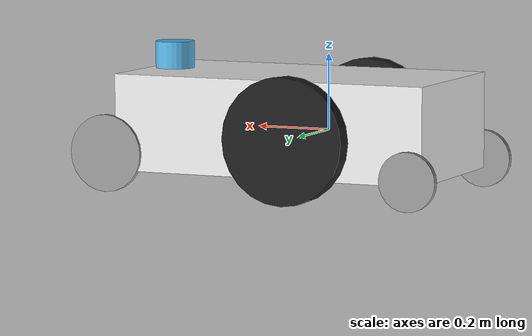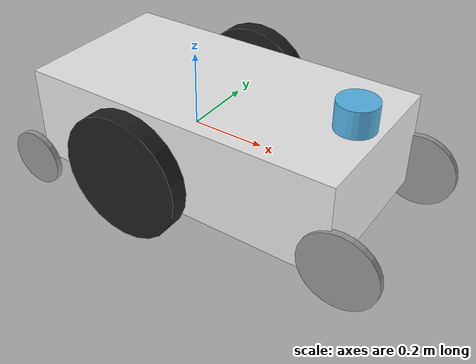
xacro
<?xml version="1.0"?>
<robot xmlns:xacro="https://www.ros.org/wiki/xacro" name="robot_name">
  <!-- Args -->
  <!-- General -->
  <xacro:arg name="sim_mode" default="false"/>

  <!-- Include all of the pieces of the robot -->
  <xacro:include filename="anteater_core.xacro"/>
  <xacro:include filename="caster.xacro"/>
  <xacro:include filename="wheel.xacro"/>
  <xacro:include filename="sensors.xacro"/>
  <xacro:include filename="ros2_control.xacro"/>

</robot>

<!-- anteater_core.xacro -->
<robot xmlns:xacro="https://www.ros.org/wiki/xacro">
  <!-- This file contains the core robot description -->
  <!-- This includes the frame of the robot and the wheels -->
  <!-- The robot is a differential drive robot with two wheels and a caster wheel -->

  <xacro:include filename="materials.xacro"/>
  <xacro:include filename="dimensions.xacro"/>
  <xacro:include filename="inertia_macros.xacro"/>

  <!-- BASE LINK -->

  <link name="base_link"/>

  <!-- BASE FOOTPRINT -->

  <link name="base_footprint"/>

  <joint name="base_footprint_joint" type="fixed">
    <parent link="base_link"/>
    <child link="base_footprint"/>
    <origin xyz="0 0 0" rpy="0 0 0"/>
  </joint>

  <!-- CHASSIS LINK -->

  <joint name="chassis_joint" type="fixed">
    <parent link="base_link"/>
    <child link="chassis_link"/>
    <origin xyz="${main_wheel_x_offset} 0 0" rpy="0 0 0"/>
  </joint>

  <link name="chassis_link">
    <visual>
      <origin xyz="${0 + (back_caster_x_offset / 4)} 0 ${back_caster_radius / 4}" rpy="0 0 0"/>
      <geometry>
        <box size="${base_length} ${base_width} ${base_height}"/>
      </geometry>

      <material name="white"/>
    </visual>

    <collision>
      <origin xyz="${0 + (back_caster_x_offset / 4)} 0 ${back_caster_radius / 4}" rpy="0 0 0"/>
      <geometry>
        <box size="${base_length} ${base_width} ${base_height}"/>
      </geometry>
    </collision>

    <xacro:inertial_box mass="50.0" x="${base_length}" y="${base_width}" z="${base_height}">
      <origin xyz="0 0 0" rpy="0 0 0"/>
    </xacro:inertial_box>
  </link>

  <gazebo reference="chassis_link">
    <material>Gazebo/White</material>
  </gazebo>
</robot>

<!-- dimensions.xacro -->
<robot xmlns:xacro="https://www.ros.org/wiki/xacro">
  <!-- This file contains the dimensions of the robot -->
  <!-- The dimensions are defined in meters -->

  <!-- Convert mm to meters -->
  <xacro:property name="mm_to_m" value="${0.001}"/>
  <xacro:property name="cm_to_m" value="${0.01}"/>

  <!-- Convert inches to meters -->
  <xacro:property name="in_to_m" value="${0.0254}"/>

  <!-- Base Chassis Dimensions -->
  <xacro:property name="base_length" value="${34 * in_to_m}"/>
  <xacro:property name="base_width" value="${17.5 * in_to_m}"/>
  <xacro:property name="base_height" value="${10 * in_to_m}"/>

  <!-- Wheel Dimensions / Location -->
  <xacro:property name="main_wheel_diameter" value="${33.02 * cm_to_m}"/>
  <xacro:property name="main_wheel_radius" value="${main_wheel_diameter / 2}"/>
  <xacro:property name="main_wheel_width" value="${48 * mm_to_m}"/>
  <xacro:property name="main_wheel_z_offset" value="${0.0}"/>
  <xacro:property name="main_wheel_y_offset" value="${28.575 * cm_to_m}"/>
  <xacro:property name="main_wheel_x_offset" value="${0.0}"/>

  <!-- Caster Dimensions / Location -->
  <xacro:property name="front_caster_diameter" value="${20.32 * cm_to_m}"/>
  <xacro:property name="front_caster_radius" value="${front_caster_diameter / 2}"/>
  <xacro:property name="front_caster_width" value="${16 * mm_to_m}"/>
  <xacro:property name="front_caster_z_offset" value="${(16.51 * cm_to_m) - ((10.16 / 2) * cm_to_m)}"/>
  <xacro:property name="front_caster_y_offset" value="${22.225 * cm_to_m}"/>
  <xacro:property name="front_caster_x_offset" value="${53.975 * cm_to_m}"/>

  <xacro:property name="back_caster_diameter" value="${15.24 * cm_to_m}"/>
  <xacro:property name="back_caster_radius" value="${back_caster_diameter / 2}"/>
  <xacro:property name="back_caster_width" value="${16 * mm_to_m}"/>
  <xacro:property name="back_caster_z_offset" value="${(16.51 * cm_to_m) - ((7.62 / 2) * cm_to_m)}"/>
  <xacro:property name="back_caster_y_offset" value="${26.9875 * cm_to_m}"/>
  <xacro:property name="back_caster_x_offset" value="${33.02 * cm_to_m}"/>

  <!-- Lidar Dimensions -->
  <xacro:property name="lidar_height" value="${71.7 * mm_to_m}"/>
  <xacro:property name="lidar_radius" value="${103.3 * mm_to_m / 2}"/>

  <!-- Assorted Offset Values -->
  <xacro:property name="base_x_offset" value="${(back_caster_x_offset / 4)}"/>
  <xacro:property name="base_z_offset" value="${back_caster_radius / 4}"/>
  <xacro:property name="lidar_x_offset" value="${(base_length / 2) - (lidar_radius / 2) + (base_x_offset / 2)}"/>
  <xacro:property name="lidar_z_offset" value="${(base_height / 2) + (lidar_height / 2) + base_z_offset}"/>
</robot>

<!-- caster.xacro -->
<robot xmlns:xacro="http://www.ros.org/wiki/xacro" >
  <xacro:include filename="dimensions.xacro"/>
  <xacro:include filename="inertia_macros.xacro"/>

  <!-- Front Casters -->
  <xacro:macro name="front_caster" params="prefix x_reflect y_reflect">
    <link name="${prefix}_front_caster_link">
      <visual>
        <origin xyz="0 0 0" rpy="${pi/2} 0 0"/>
        <geometry>
          <cylinder radius="${front_caster_radius}" length="${front_caster_width}"/>
        </geometry>
        <material name="gray"/>
      </visual>

      <collision>
        <geometry>
          <sphere radius="${front_caster_radius}"/>
        </geometry>
      </collision>

      <xacro:inertial_sphere mass="0.5" radius="${front_caster_radius}">
        <origin xyz="0 0 0" rpy="0 0 0"/>
      </xacro:inertial_sphere>
    </link>

    <joint name="${prefix}_front_caster_joint" type="continuous">
      <parent link="base_link"/>
      <child link="${prefix}_front_caster_link"/>
      <origin xyz="${x_reflect*front_caster_x_offset} ${y_reflect*front_caster_y_offset} ${-main_wheel_radius + front_caster_radius}" rpy="0 0 0"/>
      <axis xyz="0 1 0"/>
    </joint>

    <gazebo reference="{prefix}_front_caster_link">
      <material>Gazebo/Black</material>

      <!-- Frictionless-ish -->
      <!-- Stops the robot from jumping around -->
      <mu1 value="0.001"/>
      <mu2 value="0.001"/>
    </gazebo>
  </xacro:macro>

  <!-- Back Casters -->
  <xacro:macro name="back_caster" params="prefix x_reflect y_reflect">
    <link name="${prefix}_back_caster_link">
      <visual>
        <origin xyz="0 0 0" rpy="${pi/2} 0 0"/>
        <geometry>
          <cylinder radius="${back_caster_radius}" length="${back_caster_width}"/>
        </geometry>
        <material name="gray"/>
      </visual>

      <collision>
        <geometry>
          <sphere radius="${back_caster_radius}"/>
        </geometry>
      </collision>

      <xacro:inertial_sphere mass="0.5" radius="${back_caster_radius}">
        <origin xyz="0 0 0" rpy="0 0 0"/>
      </xacro:inertial_sphere>
    </link>

    <joint name="${prefix}_back_caster_joint" type="continuous">
      <parent link="base_link"/>
      <child link="${prefix}_back_caster_link"/>
      <origin xyz="${x_reflect*back_caster_x_offset} ${y_reflect*back_caster_y_offset} ${-main_wheel_radius + back_caster_radius}" rpy="0 0 0"/>
      <axis xyz="0 1 0"/>
    </joint>

    <gazebo reference="{prefix}_back_caster_link">
      <material>Gazebo/Black</material>

      <!-- Frictionless-ish -->
      <!-- Stops the robot from jumping around -->
      <mu1 value="0.001"/>
      <mu2 value="0.001"/>
    </gazebo>
  </xacro:macro>

  <xacro:front_caster prefix="left" x_reflect="1" y_reflect="1" />
  <xacro:front_caster prefix="right" x_reflect="1" y_reflect="-1" />
  <xacro:back_caster prefix="left" x_reflect="-1" y_reflect="1" />
  <xacro:back_caster prefix="right" x_reflect="-1" y_reflect="-1" />
</robot>

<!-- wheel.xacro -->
<robot xmlns:xacro="http://www.ros.org/wiki/xacro" >
  <xacro:include filename="dimensions.xacro"/>
  <xacro:include filename="inertia_macros.xacro"/>

  <xacro:macro name="wheel" params="prefix x_reflect y_reflect">
    <joint name="${prefix}_wheel_joint" type="continuous">
      <parent link="base_link"/>
      <child link="${prefix}_wheel_link"/>
      <origin xyz="${x_reflect * main_wheel_x_offset} ${y_reflect * main_wheel_y_offset} ${main_wheel_z_offset}" rpy="-${pi / 2} 0.0 0.0"/>
      <axis xyz="0 0 -1"/>
    </joint>

    <link name="${prefix}_wheel_link">
      <visual>
        <geometry>
          <cylinder radius="${main_wheel_radius}" length="${main_wheel_width}"/>
        </geometry>
        <material name="black"/>
      </visual>

      <collision>
        <geometry>
          <cylinder radius="${main_wheel_radius}" length="${main_wheel_width}"/>
        </geometry>
      </collision>

      <xacro:inertial_cylinder mass="1.0" length="${main_wheel_width}" radius="${main_wheel_radius}">
        <origin xyz="0 0 0" rpy="0 0 0"/>
      </xacro:inertial_cylinder>
    </link>

    <gazebo reference="${prefix}_wheel_link">
      <material>Gazebo/Black</material>
    </gazebo>
  </xacro:macro>

  <xacro:wheel prefix="left" x_reflect="-1" y_reflect="1" />
  <xacro:wheel prefix="right" x_reflect="1" y_reflect="-1" />
</robot>

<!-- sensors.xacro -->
<robot xmlns:xacro="https://www.ros.org/wiki/xacro">
  <xacro:include filename="dimensions.xacro"/>
  <xacro:include filename="inertia_macros.xacro"/>

  <!-- Lidar -->
  <link name="lidar_link">
    <inertial>
      <origin xyz="0 0 0" rpy="0 0 0"/>
      <mass value="0.125"/>
      <inertia ixx="0.001" ixy="0" ixz="0" iyy="0.001" iyz="0" izz="0.001" />
    </inertial>

    <collision>
      <origin xyz="0 0 0" rpy="0 0 0"/>
      <geometry>
        <cylinder radius="${lidar_radius}" length="${lidar_height}"/>
      </geometry>
    </collision>

    <visual>
      <origin xyz="0 0 0" rpy="0 0 0"/>
      <geometry>
        <cylinder radius="${lidar_radius}" length="${lidar_height}"/>
      </geometry>
    </visual>
  </link>

  <joint name="lidar_joint" type="fixed">
    <parent link="base_link"/>
    <child link="lidar_link"/>
    <origin xyz="${lidar_x_offset} 0 ${lidar_z_offset}" rpy="0 0 0"/>
  </joint>

  <!-- Lidar Plugin -->
  <gazebo reference="lidar_link">
    <sensor name="lidar" type="gpu_lidar">
      <always_on>true</always_on>
      <visualize>true</visualize>
      <update_rate>5</update_rate>
      <topic>scan</topic>
      <frame_id>lidar_link</frame_id>
      <gz_frame_id>lidar_link</gz_frame_id>
      <lidar>
        <scan>
          <horizontal>
            <samples>1875</samples>
            <resolution>1.000000</resolution>
            <min_angle>0.000000</min_angle>
            <max_angle>6.280000</max_angle>
          </horizontal>
          <vertical>
            <samples>16</samples>
            <resolution>1.000000</resolution>
            <min_angle>-0.261799</min_angle>
            <max_angle>0.261799</max_angle>
          </vertical>
        </scan>
        <range>
          <min>0.120000</min>
          <max>100</max>
          <resolution>0.015000</resolution>
        </range>
        <noise>
          <type>gaussian</type>
          <mean>0.0</mean>
          <stddev>0.01</stddev>
        </noise>
      </lidar>
    </sensor>
  </gazebo>

  <!-- IMU -->
  <link name="imu_link">
    <inertial>
      <origin xyz="0 0 0" rpy="0 0 0"/>
      <mass value="0.1"/>
      <inertia ixx="0.0001" ixy="0" ixz="0" iyy="0.0001" iyz="0" izz="0.0001"/>
    </inertial>

    <visual>
      <origin xyz="0 0 0" rpy="0 0 0"/>
      <geometry>
        <box size="0.1 0.1 0.1"/>
      </geometry>
    </visual>

    <collision>
      <origin xyz="0 0 0" rpy="0 0 0"/>
      <geometry>
        <box size="0.1 0.1 0.1"/>
      </geometry>
    </collision>
  </link>

  <joint name="imu_joint" type="fixed">
    <parent link="base_link"/>
    <child link="imu_link"/>
    <origin xyz="0 0 0.01" rpy="0 0 0"/>
  </joint>

  <!-- IMU Plugin -->
  <gazebo reference="imu_link">
    <sensor name="imu_sensor" type="imu">
      <always_on>true</always_on>
      <update_rate>100</update_rate>
      <visualize>true</visualize>
      <topic>demo/imu</topic>
      <gz_frame_id>imu_link</gz_frame_id>

      <imu>
        <angular_velocity>
          <x>
            <noise type="gaussian">
              <mean>0.0</mean>
              <stddev>2e-4</stddev>
              <bias_mean>0.0000075</bias_mean>
              <bias_stddev>0.0000008</bias_stddev>
            </noise>
          </x>
          <y>
            <noise type="gaussian">
              <mean>0.0</mean>
              <stddev>2e-4</stddev>
              <bias_mean>0.0000075</bias_mean>
              <bias_stddev>0.0000008</bias_stddev>
            </noise>
          </y>
          <z>
            <noise type="gaussian">
                <mean>0.0</mean>
                <stddev>2e-4</stddev>
                <bias_mean>0.0000075</bias_mean>
                <bias_stddev>0.0000008</bias_stddev>
            </noise>
          </z>
        </angular_velocity>
      <linear_acceleration>
          <x>
            <noise type="gaussian">
                <mean>0.0</mean>
                <stddev>1.7e-2</stddev>
                <bias_mean>0.1</bias_mean>
                <bias_stddev>0.001</bias_stddev>
            </noise>
          </x>
          <y>
            <noise type="gaussian">
                <mean>0.0</mean>
                <stddev>1.7e-2</stddev>
                <bias_mean>0.1</bias_mean>
                <bias_stddev>0.001</bias_stddev>
            </noise>
          </y>
          <z>
            <noise type="gaussian">
                <mean>0.0</mean>
                <stddev>1.7e-2</stddev>
                <bias_mean>0.1</bias_mean>
                <bias_stddev>0.001</bias_stddev>
            </noise>
          </z>
        </linear_acceleration>
      </imu>
    </sensor>
  </gazebo>

  <gazebo>
    <plugin filename="gz-sim-diff-drive-system" name="gz::sim::systems::DiffDrive">
      <!-- wheels -->
      <left_joint>left_wheel_joint</left_joint>
      <right_joint>right_wheel_joint</right_joint>

      <!-- kinematics -->
      <wheel_separation>${base_width}</wheel_separation>
      <wheel_radius>${main_wheel_radius}</wheel_radius>

      <!-- limits -->
      <max_linear_acceleration>2.0</max_linear_acceleration>

      <!-- input -->
      <topic>/demo/cmd_vel</topic>

      <!-- output -->
      <odom_topic>/demo/odom</odom_topic>
      <tf_topic>/tf</tf_topic>

      <frame_id>odom</frame_id>
      <child_frame_id>base_link</child_frame_id>
    </plugin>

    <plugin
      filename="gz-sim-joint-state-publisher-system"
      name="gz::sim::systems::JointStatePublisher">
      <topic>joint_states</topic>
    </plugin>
  </gazebo>
</robot>
